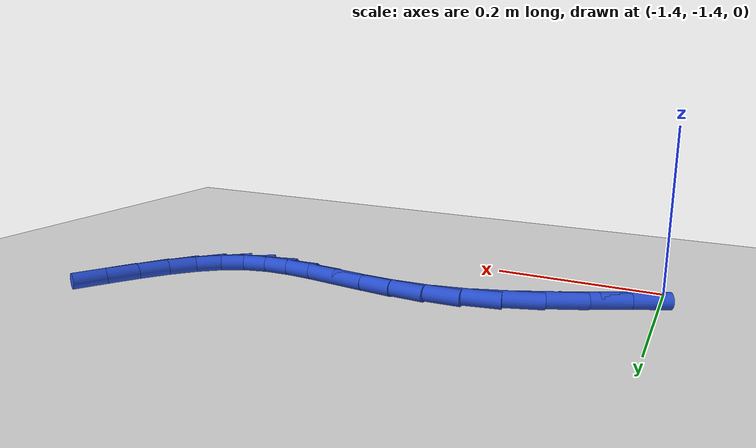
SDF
<sdf version="1.6">
 <world name="default">
  <model name="ground_plane">
   <static>1</static>
   <link name="link">
    <collision name="collision">
     <geometry><plane><normal>0 0 1</normal><size>100 100</size></plane></geometry>
     <surface><friction><ode><mu>100</mu><mu2>50</mu2></ode></friction></surface>
    </collision>
    <visual name="visual">
     <cast_shadows>0</cast_shadows>
     <geometry><plane><normal>0 0 1</normal><size>100 100</size></plane></geometry>
     <material>
      <script><uri>file://media/materials/scripts/gazebo.material</uri><name>Gazebo/WhiteGlow</name></script>
     </material>
    </visual>
   </link>
  </model>
  <model name="line">
   <link name="link_156">
    <pose>-1.3758377175603085 -1.3321210900201326 0.01 0 1.57 0.4723782346905683</pose>
    <collision name="collision">
     <geometry><cylinder><radius>0.01</radius><length>0.08</length></cylinder></geometry>
    </collision>
    <visual name="visual">
     <material>
      <script><name>Gazebo/Blue</name><uri>file://media/materials/scripts/gazebo.material</uri></script>
     </material>
     <geometry><cylinder><radius>0.01</radius><length>0.08</length></cylinder></geometry>
    </visual>
   </link>
   <link name="link_157">
    <pose>-1.3360488158040458 -1.3117904966522485 0.01 0 1.57 0.46909336646205835</pose>
    <collision name="collision">
     <geometry><cylinder><radius>0.01</radius><length>0.08</length></cylinder></geometry>
    </collision>
    <visual name="visual">
     <material>
      <script><name>Gazebo/Blue</name><uri>file://media/materials/scripts/gazebo.material</uri></script>
     </material>
     <geometry><cylinder><radius>0.01</radius><length>0.08</length></cylinder></geometry>
    </visual>
   </link>
   <link name="link_158">
    <pose>-1.293615310957052 -1.29028409947842 0.01 0 1.57 0.42314127899791304</pose>
    <collision name="collision">
     <geometry><cylinder><radius>0.01</radius><length>0.08</length></cylinder></geometry>
    </collision>
    <visual name="visual">
     <material>
      <script><name>Gazebo/Blue</name><uri>file://media/materials/scripts/gazebo.material</uri></script>
     </material>
     <geometry><cylinder><radius>0.01</radius><length>0.08</length></cylinder></geometry>
    </visual>
   </link>
   <link name="link_159">
    <pose>-1.2496412780552757 -1.270480587839751 0.01 0 1.57 0.33020636944607207</pose>
    <collision name="collision">
     <geometry><cylinder><radius>0.01</radius><length>0.08</length></cylinder></geometry>
    </collision>
    <visual name="visual">
     <material>
      <script><name>Gazebo/Blue</name><uri>file://media/materials/scripts/gazebo.material</uri></script>
     </material>
     <geometry><cylinder><radius>0.01</radius><length>0.08</length></cylinder></geometry>
    </visual>
   </link>
   <link name="link_160">
    <pose>-1.205230792134666 -1.2552586510773471 0.01 0 1.57 0.18702791172012156</pose>
    <collision name="collision">
     <geometry><cylinder><radius>0.01</radius><length>0.08</length></cylinder></geometry>
    </collision>
    <visual name="visual">
     <material>
      <script><name>Gazebo/Blue</name><uri>file://media/materials/scripts/gazebo.material</uri></script>
     </material>
     <geometry><cylinder><radius>0.01</radius><length>0.08</length></cylinder></geometry>
    </visual>
   </link>
   <link name="link_161">
    <pose>-1.1613990192987749 -1.2469639451253616 0.01 0 1.57 0.05138669434115807</pose>
    <collision name="collision">
     <geometry><cylinder><radius>0.01</radius><length>0.08</length></cylinder></geometry>
    </collision>
    <visual name="visual">
     <material>
      <script><name>Gazebo/Blue</name><uri>file://media/materials/scripts/gazebo.material</uri></script>
     </material>
     <geometry><cylinder><radius>0.01</radius><length>0.08</length></cylinder></geometry>
    </visual>
   </link>
   <link name="link_162">
    <pose>-1.1186310713546699 -1.2447643051983819 0.01 0 1.57 -0.04561632842409579</pose>
    <collision name="collision">
     <geometry><cylinder><radius>0.01</radius><length>0.08</length></cylinder></geometry>
    </collision>
    <visual name="visual">
     <material>
      <script><name>Gazebo/Blue</name><uri>file://media/materials/scripts/gazebo.material</uri></script>
     </material>
     <geometry><cylinder><radius>0.01</radius><length>0.08</length></cylinder></geometry>
    </visual>
   </link>
   <link name="link_163">
    <pose>-1.0772164449198836 -1.2466547998595723 0.01 0 1.57 -0.09958464940215242</pose>
    <collision name="collision">
     <geometry><cylinder><radius>0.01</radius><length>0.08</length></cylinder></geometry>
    </collision>
    <visual name="visual">
     <material>
      <script><name>Gazebo/Blue</name><uri>file://media/materials/scripts/gazebo.material</uri></script>
     </material>
     <geometry><cylinder><radius>0.01</radius><length>0.08</length></cylinder></geometry>
    </visual>
   </link>
   <link name="link_164">
    <pose>-1.0374443263151452 -1.2506286373577564 0.01 0 1.57 -0.106632663639709</pose>
    <collision name="collision">
     <geometry><cylinder><radius>0.01</radius><length>0.08</length></cylinder></geometry>
    </collision>
    <visual name="visual">
     <material>
      <script><name>Gazebo/Blue</name><uri>file://media/materials/scripts/gazebo.material</uri></script>
     </material>
     <geometry><cylinder><radius>0.01</radius><length>0.08</length></cylinder></geometry>
    </visual>
   </link>
   <link name="link_165">
    <pose>-0.999603901861187 -1.2546790259417577 0.01 0 1.57 -0.059451895946392525</pose>
    <collision name="collision">
     <geometry><cylinder><radius>0.01</radius><length>0.08</length></cylinder></geometry>
    </collision>
    <visual name="visual">
     <material>
      <script><name>Gazebo/Blue</name><uri>file://media/materials/scripts/gazebo.material</uri></script>
     </material>
     <geometry><cylinder><radius>0.01</radius><length>0.08</length></cylinder></geometry>
    </visual>
   </link>
   <link name="link_166">
    <pose>-0.9639843578787382 -1.2567991738603992 0.01 0 1.57 0.054820076567314295</pose>
    <collision name="collision">
     <geometry><cylinder><radius>0.01</radius><length>0.08</length></cylinder></geometry>
    </collision>
    <visual name="visual">
     <material>
      <script><name>Gazebo/Blue</name><uri>file://media/materials/scripts/gazebo.material</uri></script>
     </material>
     <geometry><cylinder><radius>0.01</radius><length>0.08</length></cylinder></geometry>
    </visual>
   </link>
   <link name="link_167">
    <pose>-0.9308748806885293 -1.2549822893625053 0.01 0 1.57 0.2506026553452066</pose>
    <collision name="collision">
     <geometry><cylinder><radius>0.01</radius><length>0.08</length></cylinder></geometry>
    </collision>
    <visual name="visual">
     <material>
      <script><name>Gazebo/Blue</name><uri>file://media/materials/scripts/gazebo.material</uri></script>
     </material>
     <geometry><cylinder><radius>0.01</radius><length>0.08</length></cylinder></geometry>
    </visual>
   </link>
   <link name="link_168">
    <pose>-0.9005642186417211 -1.24722324581089 0.01 0 1.57 0.4987064816075068</pose>
    <collision name="collision">
     <geometry><cylinder><radius>0.01</radius><length>0.08</length></cylinder></geometry>
    </collision>
    <visual name="visual">
     <material>
      <script><name>Gazebo/Blue</name><uri>file://media/materials/scripts/gazebo.material</uri></script>
     </material>
     <geometry><cylinder><radius>0.01</radius><length>0.08</length></cylinder></geometry>
    </visual>
   </link>
   <link name="link_169">
    <pose>-0.8731386653132257 -1.2322866282209668 0.01 0 1.57 0.7074820580122418</pose>
    <collision name="collision">
     <geometry><cylinder><radius>0.01</radius><length>0.08</length></cylinder></geometry>
    </collision>
    <visual name="visual">
     <material>
      <script><name>Gazebo/Blue</name><uri>file://media/materials/scripts/gazebo.material</uri></script>
     </material>
     <geometry><cylinder><radius>0.01</radius><length>0.08</length></cylinder></geometry>
    </visual>
   </link>
   <link name="link_170">
    <pose>-0.8481611370144482 -1.2109268466243104 0.01 0 1.57 0.8588418133676043</pose>
    <collision name="collision">
     <geometry><cylinder><radius>0.01</radius><length>0.08</length></cylinder></geometry>
    </collision>
    <visual name="visual">
     <material>
      <script><name>Gazebo/Blue</name><uri>file://media/materials/scripts/gazebo.material</uri></script>
     </material>
     <geometry><cylinder><radius>0.01</radius><length>0.08</length></cylinder></geometry>
    </visual>
   </link>
   <link name="link_171">
    <pose>-0.8251111014764135 -1.1842155737316191 0.01 0 1.57 0.96116892333633</pose>
    <collision name="collision">
     <geometry><cylinder><radius>0.01</radius><length>0.08</length></cylinder></geometry>
    </collision>
    <visual name="visual">
     <material>
      <script><name>Gazebo/Blue</name><uri>file://media/materials/scripts/gazebo.material</uri></script>
     </material>
     <geometry><cylinder><radius>0.01</radius><length>0.08</length></cylinder></geometry>
    </visual>
   </link>
   <link name="link_172">
    <pose>-0.8034680264301436 -1.1532244822535875 0.01 0 1.57 1.025294597627836</pose>
    <collision name="collision">
     <geometry><cylinder><radius>0.01</radius><length>0.08</length></cylinder></geometry>
    </collision>
    <visual name="visual">
     <material>
      <script><name>Gazebo/Blue</name><uri>file://media/materials/scripts/gazebo.material</uri></script>
     </material>
     <geometry><cylinder><radius>0.01</radius><length>0.08</length></cylinder></geometry>
    </visual>
   </link>
   <link name="link_173">
    <pose>-0.7827113796066619 -1.1190252449009128 0.01 0 1.57 1.0594127396950854</pose>
    <collision name="collision">
     <geometry><cylinder><radius>0.01</radius><length>0.08</length></cylinder></geometry>
    </collision>
    <visual name="visual">
     <material>
      <script><name>Gazebo/Blue</name><uri>file://media/materials/scripts/gazebo.material</uri></script>
     </material>
     <geometry><cylinder><radius>0.01</radius><length>0.08</length></cylinder></geometry>
    </visual>
   </link>
  </model>
 </world>
</sdf>
